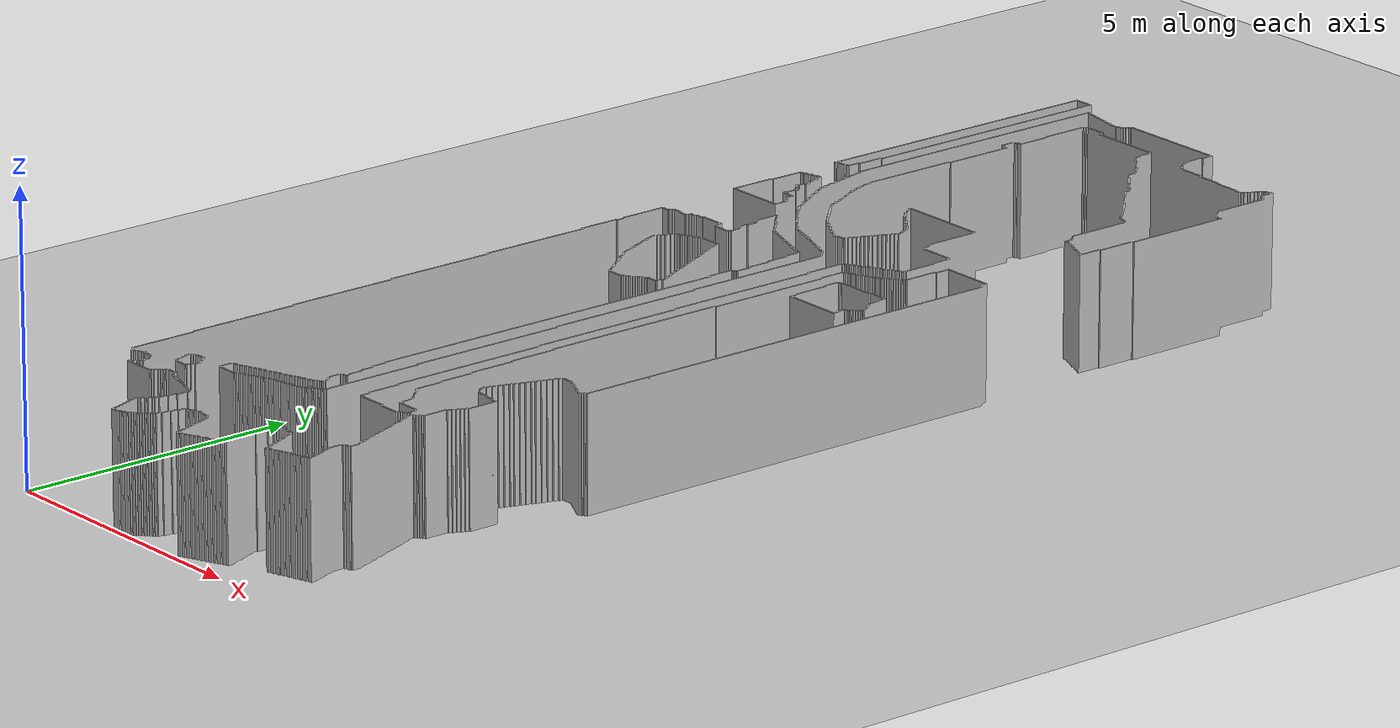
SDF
<?xml version="1.0" ?>
<sdf version="1.4">
  <world name="default">
    <include>
      <uri>model://ground_plane</uri>
    </include>
    <include>
      <uri>model://sun</uri>
    </include>
    <include>
      <uri>model://habitat16</uri>
    </include>
  </world>
</sdf>

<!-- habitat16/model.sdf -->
<sdf version="1.4">
  <model name="habitat16">
    <link name="link">
      <inertial>
        <mass>15</mass>
        <inertia>
          <ixx>0.145833</ixx>
          <ixy>0.0</ixy>
          <ixz>0.0</ixz>
          <iyy>0.145833</iyy>
          <iyz>0.0</iyz>
          <izz>0.0</izz>
        </inertia>
      </inertial>
      <collision name="collision">
        <pose>0 0 0 0 0 0</pose>
        <geometry>
          <mesh>
            <uri>model://habitat16/meshes/habitat16.stl</uri>
          </mesh>
        </geometry>
        <max_contacts>10</max_contacts>
        <surface>
            <contact>
              <ode/>
            </contact>
            <bounce/>
            <friction>
              <torsional>
                <ode/>
              </torsional>
              <ode/>
            </friction>
        </surface>
      </collision>
      <visual name="visual">
        <pose>0 0 0 0 0 0</pose>
        <geometry>
          <mesh>
            <uri>model://habitat16/meshes/habitat16.stl</uri>
          </mesh>
        </geometry>
      </visual>
      <self_collide>0</self_collide>
      <kinematic>0</kinematic>
      <gravity>1</gravity>
    </link>
    <static>1</static>
  </model>
</sdf>
